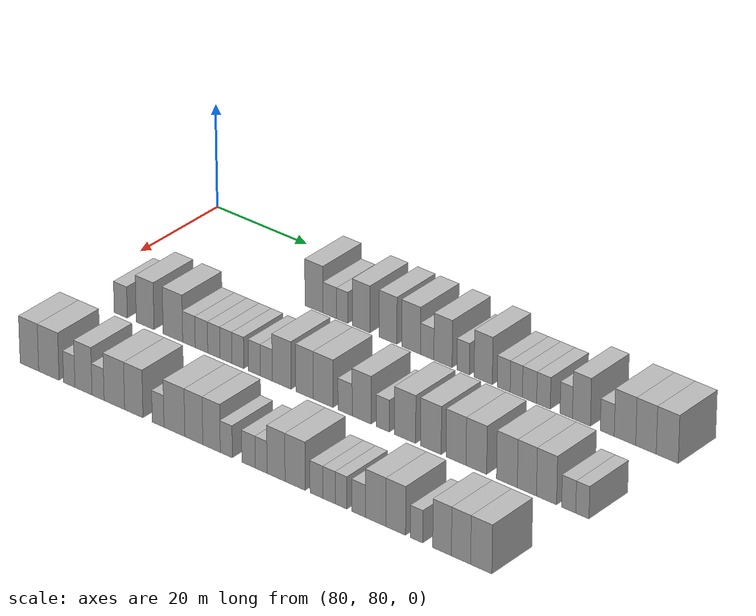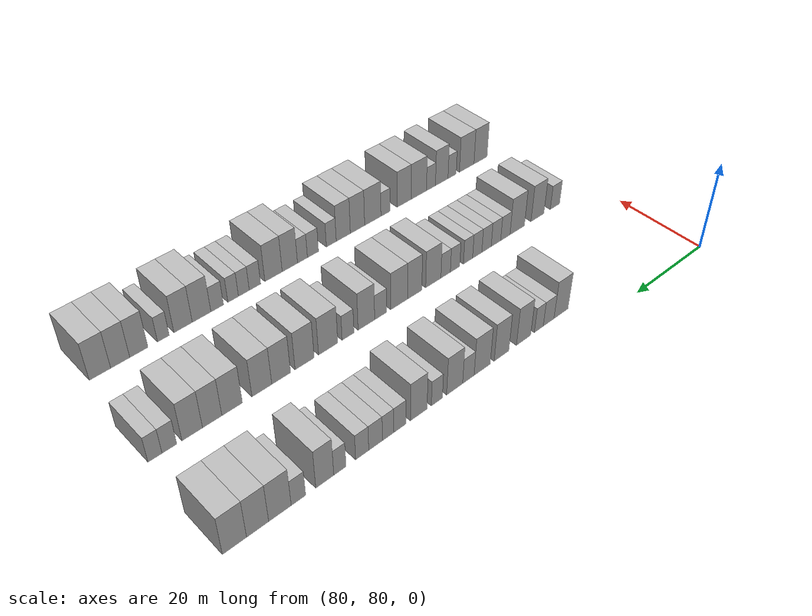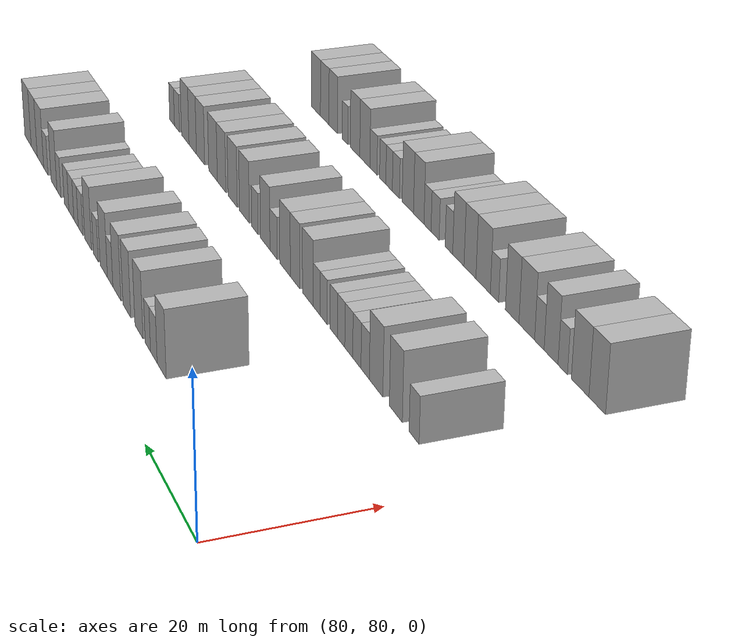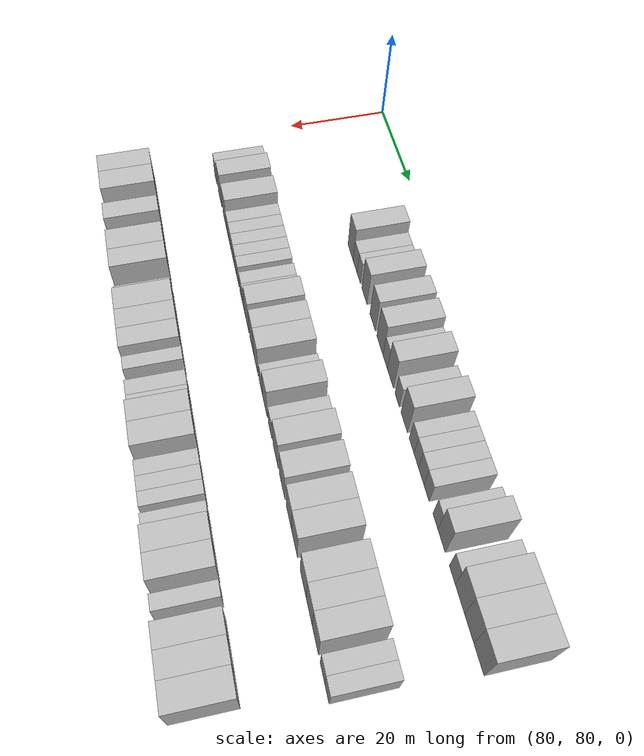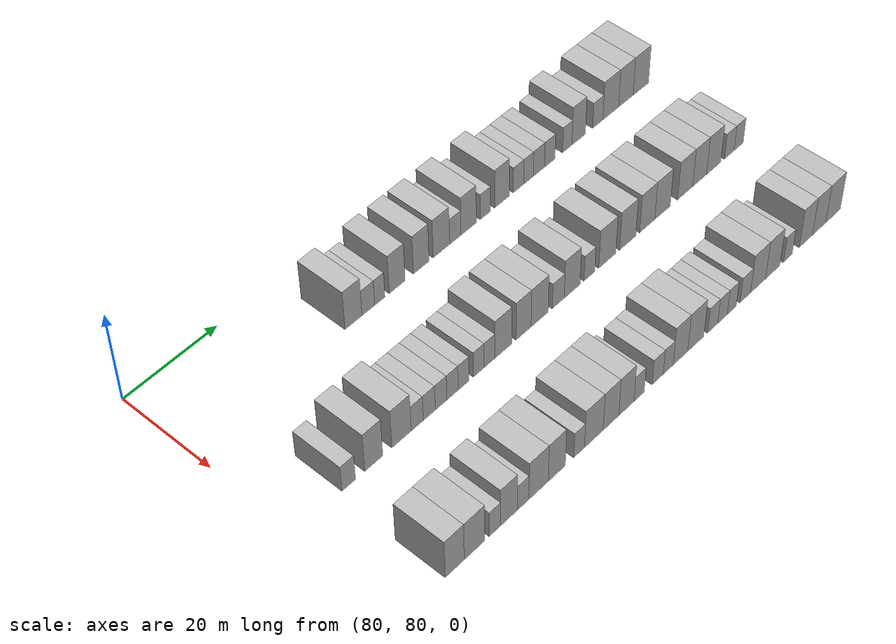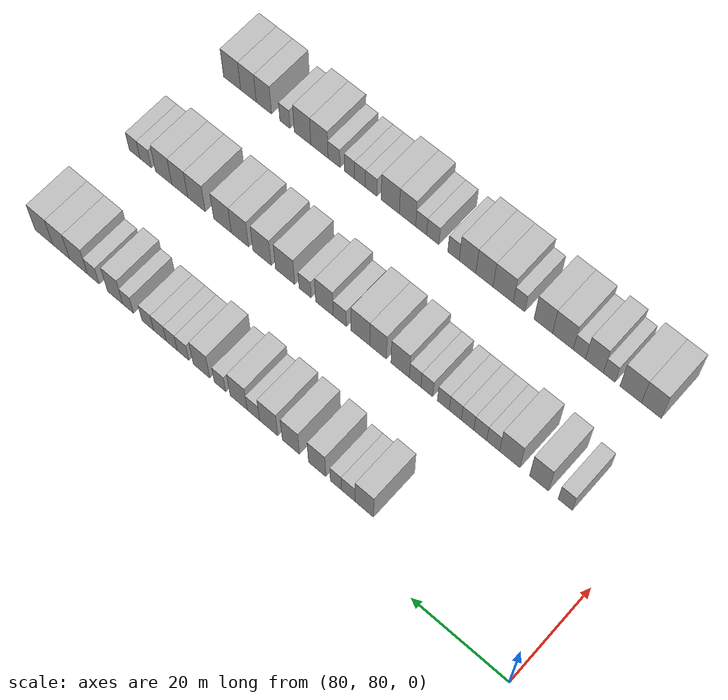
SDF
<sdf version="1.6">
 <world name="default">
  <model name="building_698">
   <static>1</static>
   <pose>91.0000 115.1047 0 0.000000 0.000000 0.000000</pose>
   <link name="link">
    <pose>0 0 4.50 0 0 0</pose>
    <collision name="collision"><geometry><box><size>10.0000 3.9226 9.0000</size></box></geometry></collision>
    <visual name="visual">
     <cast_shadows>0</cast_shadows>
     <geometry><box><size>10.0000 3.9226 9.0000</size></box></geometry>
     <material>
      <script>
       <uri>model://HANNAS_wall/materials/scripts</uri>
       <uri>model://HANNAS_wall/materials/textures</uri>
       <name>vrc/HANNAS_wall</name>
      </script>
     </material>
    </visual>
   </link>
  </model>
  <model name="building_699">
   <static>1</static>
   <pose>91.0000 118.5454 0 0.000000 0.000000 0.000000</pose>
   <link name="link">
    <pose>0 0 3.00 0 0 0</pose>
    <collision name="collision"><geometry><box><size>10.0000 2.9587 6.0000</size></box></geometry></collision>
    <visual name="visual">
     <cast_shadows>0</cast_shadows>
     <geometry><box><size>10.0000 2.9587 6.0000</size></box></geometry>
     <material>
      <script>
       <uri>model://HANNAS_wall/materials/scripts</uri>
       <uri>model://HANNAS_wall/materials/textures</uri>
       <name>vrc/HANNAS_wall</name>
      </script>
     </material>
    </visual>
   </link>
  </model>
  <model name="building_700">
   <static>1</static>
   <pose>91.0000 121.2249 0 0.000000 0.000000 0.000000</pose>
   <link name="link">
    <pose>0 0 3.00 0 0 0</pose>
    <collision name="collision"><geometry><box><size>10.0000 2.4004 6.0000</size></box></geometry></collision>
    <visual name="visual">
     <cast_shadows>0</cast_shadows>
     <geometry><box><size>10.0000 2.4004 6.0000</size></box></geometry>
     <material>
      <script>
       <uri>model://HANNAS_wall/materials/scripts</uri>
       <uri>model://HANNAS_wall/materials/textures</uri>
       <name>vrc/HANNAS_wall</name>
      </script>
     </material>
    </visual>
   </link>
  </model>
  <model name="building_701">
   <static>1</static>
   <pose>91.0000 125.3117 0 0.000000 0.000000 0.000000</pose>
   <link name="link">
    <pose>0 0 4.50 0 0 0</pose>
    <collision name="collision"><geometry><box><size>10.0000 3.7732 9.0000</size></box></geometry></collision>
    <visual name="visual">
     <cast_shadows>0</cast_shadows>
     <geometry><box><size>10.0000 3.7732 9.0000</size></box></geometry>
     <material>
      <script>
       <uri>model://HANNAS_wall/materials/scripts</uri>
       <uri>model://HANNAS_wall/materials/textures</uri>
       <name>vrc/HANNAS_wall</name>
      </script>
     </material>
    </visual>
   </link>
  </model>
  <model name="building_702">
   <static>1</static>
   <pose>91.0000 131.0826 0 0.000000 0.000000 0.000000</pose>
   <link name="link">
    <pose>0 0 4.50 0 0 0</pose>
    <collision name="collision"><geometry><box><size>10.0000 3.7686 9.0000</size></box></geometry></collision>
    <visual name="visual">
     <cast_shadows>0</cast_shadows>
     <geometry><box><size>10.0000 3.7686 9.0000</size></box></geometry>
     <material>
      <script>
       <uri>model://HANNAS_wall/materials/scripts</uri>
       <uri>model://HANNAS_wall/materials/textures</uri>
       <name>vrc/HANNAS_wall</name>
      </script>
     </material>
    </visual>
   </link>
  </model>
  <model name="building_703">
   <static>1</static>
   <pose>91.0000 135.9867 0 0.000000 0.000000 0.000000</pose>
   <link name="link">
    <pose>0 0 4.50 0 0 0</pose>
    <collision name="collision"><geometry><box><size>10.0000 4.0396 9.0000</size></box></geometry></collision>
    <visual name="visual">
     <cast_shadows>0</cast_shadows>
     <geometry><box><size>10.0000 4.0396 9.0000</size></box></geometry>
     <material>
      <script>
       <uri>model://HANNAS_wall/materials/scripts</uri>
       <uri>model://HANNAS_wall/materials/textures</uri>
       <name>vrc/HANNAS_wall</name>
      </script>
     </material>
    </visual>
   </link>
  </model>
  <model name="building_704">
   <static>1</static>
   <pose>91.0000 139.4084 0 0.000000 0.000000 0.000000</pose>
   <link name="link">
    <pose>0 0 3.00 0 0 0</pose>
    <collision name="collision"><geometry><box><size>10.0000 2.8037 6.0000</size></box></geometry></collision>
    <visual name="visual">
     <cast_shadows>0</cast_shadows>
     <geometry><box><size>10.0000 2.8037 6.0000</size></box></geometry>
     <material>
      <script>
       <uri>model://HANNAS_wall/materials/scripts</uri>
       <uri>model://HANNAS_wall/materials/textures</uri>
       <name>vrc/HANNAS_wall</name>
      </script>
     </material>
    </visual>
   </link>
  </model>
  <model name="building_705">
   <static>1</static>
   <pose>91.0000 142.7332 0 0.000000 0.000000 0.000000</pose>
   <link name="link">
    <pose>0 0 4.50 0 0 0</pose>
    <collision name="collision"><geometry><box><size>10.0000 3.8460 9.0000</size></box></geometry></collision>
    <visual name="visual">
     <cast_shadows>0</cast_shadows>
     <geometry><box><size>10.0000 3.8460 9.0000</size></box></geometry>
     <material>
      <script>
       <uri>model://HANNAS_wall/materials/scripts</uri>
       <uri>model://HANNAS_wall/materials/textures</uri>
       <name>vrc/HANNAS_wall</name>
      </script>
     </material>
    </visual>
   </link>
  </model>
  <model name="building_706">
   <static>1</static>
   <pose>91.0000 146.9626 0 0.000000 0.000000 0.000000</pose>
   <link name="link">
    <pose>0 0 3.00 0 0 0</pose>
    <collision name="collision"><geometry><box><size>10.0000 2.6127 6.0000</size></box></geometry></collision>
    <visual name="visual">
     <cast_shadows>0</cast_shadows>
     <geometry><box><size>10.0000 2.6127 6.0000</size></box></geometry>
     <material>
      <script>
       <uri>model://HANNAS_wall/materials/scripts</uri>
       <uri>model://HANNAS_wall/materials/textures</uri>
       <name>vrc/HANNAS_wall</name>
      </script>
     </material>
    </visual>
   </link>
  </model>
  <model name="building_707">
   <static>1</static>
   <pose>91.0000 151.1755 0 0.000000 0.000000 0.000000</pose>
   <link name="link">
    <pose>0 0 4.50 0 0 0</pose>
    <collision name="collision"><geometry><box><size>10.0000 3.8131 9.0000</size></box></geometry></collision>
    <visual name="visual">
     <cast_shadows>0</cast_shadows>
     <geometry><box><size>10.0000 3.8131 9.0000</size></box></geometry>
     <material>
      <script>
       <uri>model://HANNAS_wall/materials/scripts</uri>
       <uri>model://HANNAS_wall/materials/textures</uri>
       <name>vrc/HANNAS_wall</name>
      </script>
     </material>
    </visual>
   </link>
  </model>
  <model name="building_708">
   <static>1</static>
   <pose>91.0000 155.4325 0 0.000000 0.000000 0.000000</pose>
   <link name="link">
    <pose>0 0 3.00 0 0 0</pose>
    <collision name="collision"><geometry><box><size>10.0000 2.7009 6.0000</size></box></geometry></collision>
    <visual name="visual">
     <cast_shadows>0</cast_shadows>
     <geometry><box><size>10.0000 2.7009 6.0000</size></box></geometry>
     <material>
      <script>
       <uri>model://HANNAS_wall/materials/scripts</uri>
       <uri>model://HANNAS_wall/materials/textures</uri>
       <name>vrc/HANNAS_wall</name>
      </script>
     </material>
    </visual>
   </link>
  </model>
  <model name="building_709">
   <static>1</static>
   <pose>91.0000 158.0465 0 0.000000 0.000000 0.000000</pose>
   <link name="link">
    <pose>0 0 3.00 0 0 0</pose>
    <collision name="collision"><geometry><box><size>10.0000 2.5272 6.0000</size></box></geometry></collision>
    <visual name="visual">
     <cast_shadows>0</cast_shadows>
     <geometry><box><size>10.0000 2.5272 6.0000</size></box></geometry>
     <material>
      <script>
       <uri>model://HANNAS_wall/materials/scripts</uri>
       <uri>model://HANNAS_wall/materials/textures</uri>
       <name>vrc/HANNAS_wall</name>
      </script>
     </material>
    </visual>
   </link>
  </model>
  <model name="building_710">
   <static>1</static>
   <pose>91.0000 160.7879 0 0.000000 0.000000 0.000000</pose>
   <link name="link">
    <pose>0 0 3.00 0 0 0</pose>
    <collision name="collision"><geometry><box><size>10.0000 2.9554 6.0000</size></box></geometry></collision>
    <visual name="visual">
     <cast_shadows>0</cast_shadows>
     <geometry><box><size>10.0000 2.9554 6.0000</size></box></geometry>
     <material>
      <script>
       <uri>model://HANNAS_wall/materials/scripts</uri>
       <uri>model://HANNAS_wall/materials/textures</uri>
       <name>vrc/HANNAS_wall</name>
      </script>
     </material>
    </visual>
   </link>
  </model>
  <model name="building_711">
   <static>1</static>
   <pose>91.0000 163.6595 0 0.000000 0.000000 0.000000</pose>
   <link name="link">
    <pose>0 0 3.00 0 0 0</pose>
    <collision name="collision"><geometry><box><size>10.0000 2.7878 6.0000</size></box></geometry></collision>
    <visual name="visual">
     <cast_shadows>0</cast_shadows>
     <geometry><box><size>10.0000 2.7878 6.0000</size></box></geometry>
     <material>
      <script>
       <uri>model://HANNAS_wall/materials/scripts</uri>
       <uri>model://HANNAS_wall/materials/textures</uri>
       <name>vrc/HANNAS_wall</name>
      </script>
     </material>
    </visual>
   </link>
  </model>
  <model name="building_712">
   <static>1</static>
   <pose>91.0000 168.3197 0 0.000000 0.000000 0.000000</pose>
   <link name="link">
    <pose>0 0 3.00 0 0 0</pose>
    <collision name="collision"><geometry><box><size>10.0000 2.5326 6.0000</size></box></geometry></collision>
    <visual name="visual">
     <cast_shadows>0</cast_shadows>
     <geometry><box><size>10.0000 2.5326 6.0000</size></box></geometry>
     <material>
      <script>
       <uri>model://HANNAS_wall/materials/scripts</uri>
       <uri>model://HANNAS_wall/materials/textures</uri>
       <name>vrc/HANNAS_wall</name>
      </script>
     </material>
    </visual>
   </link>
  </model>
  <model name="building_713">
   <static>1</static>
   <pose>91.0000 171.4127 0 0.000000 0.000000 0.000000</pose>
   <link name="link">
    <pose>0 0 4.50 0 0 0</pose>
    <collision name="collision"><geometry><box><size>10.0000 3.6535 9.0000</size></box></geometry></collision>
    <visual name="visual">
     <cast_shadows>0</cast_shadows>
     <geometry><box><size>10.0000 3.6535 9.0000</size></box></geometry>
     <material>
      <script>
       <uri>model://HANNAS_wall/materials/scripts</uri>
       <uri>model://HANNAS_wall/materials/textures</uri>
       <name>vrc/HANNAS_wall</name>
      </script>
     </material>
    </visual>
   </link>
  </model>
  <model name="building_714">
   <static>1</static>
   <pose>91.0000 176.6559 0 0.000000 0.000000 0.000000</pose>
   <link name="link">
    <pose>0 0 3.00 0 0 0</pose>
    <collision name="collision"><geometry><box><size>10.0000 2.8329 6.0000</size></box></geometry></collision>
    <visual name="visual">
     <cast_shadows>0</cast_shadows>
     <geometry><box><size>10.0000 2.8329 6.0000</size></box></geometry>
     <material>
      <script>
       <uri>model://HANNAS_wall/materials/scripts</uri>
       <uri>model://HANNAS_wall/materials/textures</uri>
       <name>vrc/HANNAS_wall</name>
      </script>
     </material>
    </visual>
   </link>
  </model>
  <model name="building_715">
   <static>1</static>
   <pose>91.0000 180.2312 0 0.000000 0.000000 0.000000</pose>
   <link name="link">
    <pose>0 0 4.50 0 0 0</pose>
    <collision name="collision"><geometry><box><size>10.0000 4.3177 9.0000</size></box></geometry></collision>
    <visual name="visual">
     <cast_shadows>0</cast_shadows>
     <geometry><box><size>10.0000 4.3177 9.0000</size></box></geometry>
     <material>
      <script>
       <uri>model://HANNAS_wall/materials/scripts</uri>
       <uri>model://HANNAS_wall/materials/textures</uri>
       <name>vrc/HANNAS_wall</name>
      </script>
     </material>
    </visual>
   </link>
  </model>
  <model name="building_716">
   <static>1</static>
   <pose>91.0000 184.4493 0 0.000000 0.000000 0.000000</pose>
   <link name="link">
    <pose>0 0 4.50 0 0 0</pose>
    <collision name="collision"><geometry><box><size>10.0000 4.1187 9.0000</size></box></geometry></collision>
    <visual name="visual">
     <cast_shadows>0</cast_shadows>
     <geometry><box><size>10.0000 4.1187 9.0000</size></box></geometry>
     <material>
      <script>
       <uri>model://HANNAS_wall/materials/scripts</uri>
       <uri>model://HANNAS_wall/materials/textures</uri>
       <name>vrc/HANNAS_wall</name>
      </script>
     </material>
    </visual>
   </link>
  </model>
  <model name="building_717">
   <static>1</static>
   <pose>91.0000 188.7040 0 0.000000 0.000000 0.000000</pose>
   <link name="link">
    <pose>0 0 4.50 0 0 0</pose>
    <collision name="collision"><geometry><box><size>10.0000 4.3907 9.0000</size></box></geometry></collision>
    <visual name="visual">
     <cast_shadows>0</cast_shadows>
     <geometry><box><size>10.0000 4.3907 9.0000</size></box></geometry>
     <material>
      <script>
       <uri>model://HANNAS_wall/materials/scripts</uri>
       <uri>model://HANNAS_wall/materials/textures</uri>
       <name>vrc/HANNAS_wall</name>
      </script>
     </material>
    </visual>
   </link>
  </model>
  <model name="building_883">
   <static>1</static>
   <pose>113.0000 91.5932 0 0.000000 0.000000 0.000000</pose>
   <link name="link">
    <pose>0 0 3.00 0 0 0</pose>
    <collision name="collision"><geometry><box><size>10.0000 2.9163 6.0000</size></box></geometry></collision>
    <visual name="visual">
     <cast_shadows>0</cast_shadows>
     <geometry><box><size>10.0000 2.9163 6.0000</size></box></geometry>
     <material>
      <script>
       <uri>model://HANNAS_wall/materials/scripts</uri>
       <uri>model://HANNAS_wall/materials/textures</uri>
       <name>vrc/HANNAS_wall</name>
      </script>
     </material>
    </visual>
   </link>
  </model>
  <model name="building_884">
   <static>1</static>
   <pose>113.0000 97.0193 0 0.000000 0.000000 0.000000</pose>
   <link name="link">
    <pose>0 0 4.50 0 0 0</pose>
    <collision name="collision"><geometry><box><size>10.0000 3.9360 9.0000</size></box></geometry></collision>
    <visual name="visual">
     <cast_shadows>0</cast_shadows>
     <geometry><box><size>10.0000 3.9360 9.0000</size></box></geometry>
     <material>
      <script>
       <uri>model://HANNAS_wall/materials/scripts</uri>
       <uri>model://HANNAS_wall/materials/textures</uri>
       <name>vrc/HANNAS_wall</name>
      </script>
     </material>
    </visual>
   </link>
  </model>
  <model name="building_885">
   <static>1</static>
   <pose>113.0000 103.1358 0 0.000000 0.000000 0.000000</pose>
   <link name="link">
    <pose>0 0 4.50 0 0 0</pose>
    <collision name="collision"><geometry><box><size>10.0000 4.2968 9.0000</size></box></geometry></collision>
    <visual name="visual">
     <cast_shadows>0</cast_shadows>
     <geometry><box><size>10.0000 4.2968 9.0000</size></box></geometry>
     <material>
      <script>
       <uri>model://HANNAS_wall/materials/scripts</uri>
       <uri>model://HANNAS_wall/materials/textures</uri>
       <name>vrc/HANNAS_wall</name>
      </script>
     </material>
    </visual>
   </link>
  </model>
  <model name="building_886">
   <static>1</static>
   <pose>113.0000 106.6493 0 0.000000 0.000000 0.000000</pose>
   <link name="link">
    <pose>0 0 3.00 0 0 0</pose>
    <collision name="collision"><geometry><box><size>10.0000 2.7303 6.0000</size></box></geometry></collision>
    <visual name="visual">
     <cast_shadows>0</cast_shadows>
     <geometry><box><size>10.0000 2.7303 6.0000</size></box></geometry>
     <material>
      <script>
       <uri>model://HANNAS_wall/materials/scripts</uri>
       <uri>model://HANNAS_wall/materials/textures</uri>
       <name>vrc/HANNAS_wall</name>
      </script>
     </material>
    </visual>
   </link>
  </model>
  <model name="building_887">
   <static>1</static>
   <pose>113.0000 109.3867 0 0.000000 0.000000 0.000000</pose>
   <link name="link">
    <pose>0 0 3.00 0 0 0</pose>
    <collision name="collision"><geometry><box><size>10.0000 2.7445 6.0000</size></box></geometry></collision>
    <visual name="visual">
     <cast_shadows>0</cast_shadows>
     <geometry><box><size>10.0000 2.7445 6.0000</size></box></geometry>
     <material>
      <script>
       <uri>model://HANNAS_wall/materials/scripts</uri>
       <uri>model://HANNAS_wall/materials/textures</uri>
       <name>vrc/HANNAS_wall</name>
      </script>
     </material>
    </visual>
   </link>
  </model>
  <model name="building_888">
   <static>1</static>
   <pose>113.0000 112.0951 0 0.000000 0.000000 0.000000</pose>
   <link name="link">
    <pose>0 0 3.00 0 0 0</pose>
    <collision name="collision"><geometry><box><size>10.0000 2.6723 6.0000</size></box></geometry></collision>
    <visual name="visual">
     <cast_shadows>0</cast_shadows>
     <geometry><box><size>10.0000 2.6723 6.0000</size></box></geometry>
     <material>
      <script>
       <uri>model://HANNAS_wall/materials/scripts</uri>
       <uri>model://HANNAS_wall/materials/textures</uri>
       <name>vrc/HANNAS_wall</name>
      </script>
     </material>
    </visual>
   </link>
  </model>
  <model name="building_889">
   <static>1</static>
   <pose>113.0000 114.7264 0 0.000000 0.000000 0.000000</pose>
   <link name="link">
    <pose>0 0 3.00 0 0 0</pose>
    <collision name="collision"><geometry><box><size>10.0000 2.5903 6.0000</size></box></geometry></collision>
    <visual name="visual">
     <cast_shadows>0</cast_shadows>
     <geometry><box><size>10.0000 2.5903 6.0000</size></box></geometry>
     <material>
      <script>
       <uri>model://HANNAS_wall/materials/scripts</uri>
       <uri>model://HANNAS_wall/materials/textures</uri>
       <name>vrc/HANNAS_wall</name>
      </script>
     </material>
    </visual>
   </link>
  </model>
  <model name="building_890">
   <static>1</static>
   <pose>113.0000 117.3029 0 0.000000 0.000000 0.000000</pose>
   <link name="link">
    <pose>0 0 3.00 0 0 0</pose>
    <collision name="collision"><geometry><box><size>10.0000 2.5628 6.0000</size></box></geometry></collision>
    <visual name="visual">
     <cast_shadows>0</cast_shadows>
     <geometry><box><size>10.0000 2.5628 6.0000</size></box></geometry>
     <material>
      <script>
       <uri>model://HANNAS_wall/materials/scripts</uri>
       <uri>model://HANNAS_wall/materials/textures</uri>
       <name>vrc/HANNAS_wall</name>
      </script>
     </material>
    </visual>
   </link>
  </model>
  <model name="building_891">
   <static>1</static>
   <pose>113.0000 120.8679 0 0.000000 0.000000 0.000000</pose>
   <link name="link">
    <pose>0 0 3.00 0 0 0</pose>
    <collision name="collision"><geometry><box><size>10.0000 2.5671 6.0000</size></box></geometry></collision>
    <visual name="visual">
     <cast_shadows>0</cast_shadows>
     <geometry><box><size>10.0000 2.5671 6.0000</size></box></geometry>
     <material>
      <script>
       <uri>model://HANNAS_wall/materials/scripts</uri>
       <uri>model://HANNAS_wall/materials/textures</uri>
       <name>vrc/HANNAS_wall</name>
      </script>
     </material>
    </visual>
   </link>
  </model>
  <model name="building_892">
   <static>1</static>
   <pose>113.0000 123.4272 0 0.000000 0.000000 0.000000</pose>
   <link name="link">
    <pose>0 0 3.00 0 0 0</pose>
    <collision name="collision"><geometry><box><size>10.0000 2.5516 6.0000</size></box></geometry></collision>
    <visual name="visual">
     <cast_shadows>0</cast_shadows>
     <geometry><box><size>10.0000 2.5516 6.0000</size></box></geometry>
     <material>
      <script>
       <uri>model://HANNAS_wall/materials/scripts</uri>
       <uri>model://HANNAS_wall/materials/textures</uri>
       <name>vrc/HANNAS_wall</name>
      </script>
     </material>
    </visual>
   </link>
  </model>
  <model name="building_893">
   <static>1</static>
   <pose>113.0000 126.7209 0 0.000000 0.000000 0.000000</pose>
   <link name="link">
    <pose>0 0 4.50 0 0 0</pose>
    <collision name="collision"><geometry><box><size>10.0000 4.0356 9.0000</size></box></geometry></collision>
    <visual name="visual">
     <cast_shadows>0</cast_shadows>
     <geometry><box><size>10.0000 4.0356 9.0000</size></box></geometry>
     <material>
      <script>
       <uri>model://HANNAS_wall/materials/scripts</uri>
       <uri>model://HANNAS_wall/materials/textures</uri>
       <name>vrc/HANNAS_wall</name>
      </script>
     </material>
    </visual>
   </link>
  </model>
  <model name="building_894">
   <static>1</static>
   <pose>113.0000 131.5843 0 0.000000 0.000000 0.000000</pose>
   <link name="link">
    <pose>0 0 4.50 0 0 0</pose>
    <collision name="collision"><geometry><box><size>10.0000 3.6912 9.0000</size></box></geometry></collision>
    <visual name="visual">
     <cast_shadows>0</cast_shadows>
     <geometry><box><size>10.0000 3.6912 9.0000</size></box></geometry>
     <material>
      <script>
       <uri>model://HANNAS_wall/materials/scripts</uri>
       <uri>model://HANNAS_wall/materials/textures</uri>
       <name>vrc/HANNAS_wall</name>
      </script>
     </material>
    </visual>
   </link>
  </model>
  <model name="building_895">
   <static>1</static>
   <pose>113.0000 135.5460 0 0.000000 0.000000 0.000000</pose>
   <link name="link">
    <pose>0 0 4.50 0 0 0</pose>
    <collision name="collision"><geometry><box><size>10.0000 4.2323 9.0000</size></box></geometry></collision>
    <visual name="visual">
     <cast_shadows>0</cast_shadows>
     <geometry><box><size>10.0000 4.2323 9.0000</size></box></geometry>
     <material>
      <script>
       <uri>model://HANNAS_wall/materials/scripts</uri>
       <uri>model://HANNAS_wall/materials/textures</uri>
       <name>vrc/HANNAS_wall</name>
      </script>
     </material>
    </visual>
   </link>
  </model>
  <model name="building_896">
   <static>1</static>
   <pose>113.0000 140.1565 0 0.000000 0.000000 0.000000</pose>
   <link name="link">
    <pose>0 0 3.00 0 0 0</pose>
    <collision name="collision"><geometry><box><size>10.0000 2.9887 6.0000</size></box></geometry></collision>
    <visual name="visual">
     <cast_shadows>0</cast_shadows>
     <geometry><box><size>10.0000 2.9887 6.0000</size></box></geometry>
     <material>
      <script>
       <uri>model://HANNAS_wall/materials/scripts</uri>
       <uri>model://HANNAS_wall/materials/textures</uri>
       <name>vrc/HANNAS_wall</name>
      </script>
     </material>
    </visual>
   </link>
  </model>
  <model name="building_897">
   <static>1</static>
   <pose>113.0000 143.6491 0 0.000000 0.000000 0.000000</pose>
   <link name="link">
    <pose>0 0 4.50 0 0 0</pose>
    <collision name="collision"><geometry><box><size>10.0000 3.9964 9.0000</size></box></geometry></collision>
    <visual name="visual">
     <cast_shadows>0</cast_shadows>
     <geometry><box><size>10.0000 3.9964 9.0000</size></box></geometry>
     <material>
      <script>
       <uri>model://HANNAS_wall/materials/scripts</uri>
       <uri>model://HANNAS_wall/materials/textures</uri>
       <name>vrc/HANNAS_wall</name>
      </script>
     </material>
    </visual>
   </link>
  </model>
  <model name="building_898">
   <static>1</static>
   <pose>113.0000 148.0474 0 0.000000 0.000000 0.000000</pose>
   <link name="link">
    <pose>0 0 3.00 0 0 0</pose>
    <collision name="collision"><geometry><box><size>10.0000 2.8003 6.0000</size></box></geometry></collision>
    <visual name="visual">
     <cast_shadows>0</cast_shadows>
     <geometry><box><size>10.0000 2.8003 6.0000</size></box></geometry>
     <material>
      <script>
       <uri>model://HANNAS_wall/materials/scripts</uri>
       <uri>model://HANNAS_wall/materials/textures</uri>
       <name>vrc/HANNAS_wall</name>
      </script>
     </material>
    </visual>
   </link>
  </model>
  <model name="building_899">
   <static>1</static>
   <pose>113.0000 152.6625 0 0.000000 0.000000 0.000000</pose>
   <link name="link">
    <pose>0 0 4.50 0 0 0</pose>
    <collision name="collision"><geometry><box><size>10.0000 4.4299 9.0000</size></box></geometry></collision>
    <visual name="visual">
     <cast_shadows>0</cast_shadows>
     <geometry><box><size>10.0000 4.4299 9.0000</size></box></geometry>
     <material>
      <script>
       <uri>model://HANNAS_wall/materials/scripts</uri>
       <uri>model://HANNAS_wall/materials/textures</uri>
       <name>vrc/HANNAS_wall</name>
      </script>
     </material>
    </visual>
   </link>
  </model>
  <model name="building_900">
   <static>1</static>
   <pose>113.0000 158.0109 0 0.000000 0.000000 0.000000</pose>
   <link name="link">
    <pose>0 0 4.50 0 0 0</pose>
    <collision name="collision"><geometry><box><size>10.0000 4.2669 9.0000</size></box></geometry></collision>
    <visual name="visual">
     <cast_shadows>0</cast_shadows>
     <geometry><box><size>10.0000 4.2669 9.0000</size></box></geometry>
     <material>
      <script>
       <uri>model://HANNAS_wall/materials/scripts</uri>
       <uri>model://HANNAS_wall/materials/textures</uri>
       <name>vrc/HANNAS_wall</name>
      </script>
     </material>
    </visual>
   </link>
  </model>
  <model name="building_901">
   <static>1</static>
   <pose>113.0000 163.1809 0 0.000000 0.000000 0.000000</pose>
   <link name="link">
    <pose>0 0 4.50 0 0 0</pose>
    <collision name="collision"><geometry><box><size>10.0000 4.0730 9.0000</size></box></geometry></collision>
    <visual name="visual">
     <cast_shadows>0</cast_shadows>
     <geometry><box><size>10.0000 4.0730 9.0000</size></box></geometry>
     <material>
      <script>
       <uri>model://HANNAS_wall/materials/scripts</uri>
       <uri>model://HANNAS_wall/materials/textures</uri>
       <name>vrc/HANNAS_wall</name>
      </script>
     </material>
    </visual>
   </link>
  </model>
  <model name="building_902">
   <static>1</static>
   <pose>113.0000 167.3187 0 0.000000 0.000000 0.000000</pose>
   <link name="link">
    <pose>0 0 4.50 0 0 0</pose>
    <collision name="collision"><geometry><box><size>10.0000 4.2027 9.0000</size></box></geometry></collision>
    <visual name="visual">
     <cast_shadows>0</cast_shadows>
     <geometry><box><size>10.0000 4.2027 9.0000</size></box></geometry>
     <material>
      <script>
       <uri>model://HANNAS_wall/materials/scripts</uri>
       <uri>model://HANNAS_wall/materials/textures</uri>
       <name>vrc/HANNAS_wall</name>
      </script>
     </material>
    </visual>
   </link>
  </model>
  <model name="building_903">
   <static>1</static>
   <pose>113.0000 173.5168 0 0.000000 0.000000 0.000000</pose>
   <link name="link">
    <pose>0 0 4.50 0 0 0</pose>
    <collision name="collision"><geometry><box><size>10.0000 4.1936 9.0000</size></box></geometry></collision>
    <visual name="visual">
     <cast_shadows>0</cast_shadows>
     <geometry><box><size>10.0000 4.1936 9.0000</size></box></geometry>
     <material>
      <script>
       <uri>model://HANNAS_wall/materials/scripts</uri>
       <uri>model://HANNAS_wall/materials/textures</uri>
       <name>vrc/HANNAS_wall</name>
      </script>
     </material>
    </visual>
   </link>
  </model>
  <model name="building_904">
   <static>1</static>
   <pose>113.0000 177.5448 0 0.000000 0.000000 0.000000</pose>
   <link name="link">
    <pose>0 0 4.50 0 0 0</pose>
    <collision name="collision"><geometry><box><size>10.0000 3.8624 9.0000</size></box></geometry></collision>
    <visual name="visual">
     <cast_shadows>0</cast_shadows>
     <geometry><box><size>10.0000 3.8624 9.0000</size></box></geometry>
     <material>
      <script>
       <uri>model://HANNAS_wall/materials/scripts</uri>
       <uri>model://HANNAS_wall/materials/textures</uri>
       <name>vrc/HANNAS_wall</name>
      </script>
     </material>
    </visual>
   </link>
  </model>
  <model name="building_905">
   <static>1</static>
   <pose>113.0000 181.4827 0 0.000000 0.000000 0.000000</pose>
   <link name="link">
    <pose>0 0 4.50 0 0 0</pose>
    <collision name="collision"><geometry><box><size>10.0000 4.0134 9.0000</size></box></geometry></collision>
    <visual name="visual">
     <cast_shadows>0</cast_shadows>
     <geometry><box><size>10.0000 4.0134 9.0000</size></box></geometry>
     <material>
      <script>
       <uri>model://HANNAS_wall/materials/scripts</uri>
       <uri>model://HANNAS_wall/materials/textures</uri>
       <name>vrc/HANNAS_wall</name>
      </script>
     </material>
    </visual>
   </link>
  </model>
  <model name="building_906">
   <static>1</static>
   <pose>113.0000 185.8919 0 0.000000 0.000000 0.000000</pose>
   <link name="link">
    <pose>0 0 3.00 0 0 0</pose>
    <collision name="collision"><geometry><box><size>10.0000 2.8051 6.0000</size></box></geometry></collision>
    <visual name="visual">
     <cast_shadows>0</cast_shadows>
     <geometry><box><size>10.0000 2.8051 6.0000</size></box></geometry>
     <material>
      <script>
       <uri>model://HANNAS_wall/materials/scripts</uri>
       <uri>model://HANNAS_wall/materials/textures</uri>
       <name>vrc/HANNAS_wall</name>
      </script>
     </material>
    </visual>
   </link>
  </model>
  <model name="building_907">
   <static>1</static>
   <pose>113.0000 188.6106 0 0.000000 0.000000 0.000000</pose>
   <link name="link">
    <pose>0 0 3.00 0 0 0</pose>
    <collision name="collision"><geometry><box><size>10.0000 2.6323 6.0000</size></box></geometry></collision>
    <visual name="visual">
     <cast_shadows>0</cast_shadows>
     <geometry><box><size>10.0000 2.6323 6.0000</size></box></geometry>
     <material>
      <script>
       <uri>model://HANNAS_wall/materials/scripts</uri>
       <uri>model://HANNAS_wall/materials/textures</uri>
       <name>vrc/HANNAS_wall</name>
      </script>
     </material>
    </visual>
   </link>
  </model>
  <model name="building_1070">
   <static>1</static>
   <pose>135.0000 91.1987 0 0.000000 0.000000 0.000000</pose>
   <link name="link">
    <pose>0 0 4.50 0 0 0</pose>
    <collision name="collision"><geometry><box><size>10.0000 4.1302 9.0000</size></box></geometry></collision>
    <visual name="visual">
     <cast_shadows>0</cast_shadows>
     <geometry><box><size>10.0000 4.1302 9.0000</size></box></geometry>
     <material>
      <script>
       <uri>model://HANNAS_wall/materials/scripts</uri>
       <uri>model://HANNAS_wall/materials/textures</uri>
       <name>vrc/HANNAS_wall</name>
      </script>
     </material>
    </visual>
   </link>
  </model>
  <model name="building_1071">
   <static>1</static>
   <pose>135.0000 95.5090 0 0.000000 0.000000 0.000000</pose>
   <link name="link">
    <pose>0 0 4.50 0 0 0</pose>
    <collision name="collision"><geometry><box><size>10.0000 4.4904 9.0000</size></box></geometry></collision>
    <visual name="visual">
     <cast_shadows>0</cast_shadows>
     <geometry><box><size>10.0000 4.4904 9.0000</size></box></geometry>
     <material>
      <script>
       <uri>model://HANNAS_wall/materials/scripts</uri>
       <uri>model://HANNAS_wall/materials/textures</uri>
       <name>vrc/HANNAS_wall</name>
      </script>
     </material>
    </visual>
   </link>
  </model>
  <model name="building_1072">
   <static>1</static>
   <pose>135.0000 100.0014 0 0.000000 0.000000 0.000000</pose>
   <link name="link">
    <pose>0 0 3.00 0 0 0</pose>
    <collision name="collision"><geometry><box><size>10.0000 2.4945 6.0000</size></box></geometry></collision>
    <visual name="visual">
     <cast_shadows>0</cast_shadows>
     <geometry><box><size>10.0000 2.4945 6.0000</size></box></geometry>
     <material>
      <script>
       <uri>model://HANNAS_wall/materials/scripts</uri>
       <uri>model://HANNAS_wall/materials/textures</uri>
       <name>vrc/HANNAS_wall</name>
      </script>
     </material>
    </visual>
   </link>
  </model>
  <model name="building_1073">
   <static>1</static>
   <pose>135.0000 103.1273 0 0.000000 0.000000 0.000000</pose>
   <link name="link">
    <pose>0 0 4.50 0 0 0</pose>
    <collision name="collision"><geometry><box><size>10.0000 3.7574 9.0000</size></box></geometry></collision>
    <visual name="visual">
     <cast_shadows>0</cast_shadows>
     <geometry><box><size>10.0000 3.7574 9.0000</size></box></geometry>
     <material>
      <script>
       <uri>model://HANNAS_wall/materials/scripts</uri>
       <uri>model://HANNAS_wall/materials/textures</uri>
       <name>vrc/HANNAS_wall</name>
      </script>
     </material>
    </visual>
   </link>
  </model>
  <model name="building_1074">
   <static>1</static>
   <pose>135.0000 106.3194 0 0.000000 0.000000 0.000000</pose>
   <link name="link">
    <pose>0 0 3.00 0 0 0</pose>
    <collision name="collision"><geometry><box><size>10.0000 2.6269 6.0000</size></box></geometry></collision>
    <visual name="visual">
     <cast_shadows>0</cast_shadows>
     <geometry><box><size>10.0000 2.6269 6.0000</size></box></geometry>
     <material>
      <script>
       <uri>model://HANNAS_wall/materials/scripts</uri>
       <uri>model://HANNAS_wall/materials/textures</uri>
       <name>vrc/HANNAS_wall</name>
      </script>
     </material>
    </visual>
   </link>
  </model>
  <model name="building_1075">
   <static>1</static>
   <pose>135.0000 109.8590 0 0.000000 0.000000 0.000000</pose>
   <link name="link">
    <pose>0 0 4.50 0 0 0</pose>
    <collision name="collision"><geometry><box><size>10.0000 4.4523 9.0000</size></box></geometry></collision>
    <visual name="visual">
     <cast_shadows>0</cast_shadows>
     <geometry><box><size>10.0000 4.4523 9.0000</size></box></geometry>
     <material>
      <script>
       <uri>model://HANNAS_wall/materials/scripts</uri>
       <uri>model://HANNAS_wall/materials/textures</uri>
       <name>vrc/HANNAS_wall</name>
      </script>
     </material>
    </visual>
   </link>
  </model>
  <model name="building_1076">
   <static>1</static>
   <pose>135.0000 114.0672 0 0.000000 0.000000 0.000000</pose>
   <link name="link">
    <pose>0 0 4.50 0 0 0</pose>
    <collision name="collision"><geometry><box><size>10.0000 3.9640 9.0000</size></box></geometry></collision>
    <visual name="visual">
     <cast_shadows>0</cast_shadows>
     <geometry><box><size>10.0000 3.9640 9.0000</size></box></geometry>
     <material>
      <script>
       <uri>model://HANNAS_wall/materials/scripts</uri>
       <uri>model://HANNAS_wall/materials/textures</uri>
       <name>vrc/HANNAS_wall</name>
      </script>
     </material>
    </visual>
   </link>
  </model>
  <model name="building_1077">
   <static>1</static>
   <pose>135.0000 119.3091 0 0.000000 0.000000 0.000000</pose>
   <link name="link">
    <pose>0 0 3.00 0 0 0</pose>
    <collision name="collision"><geometry><box><size>10.0000 2.5199 6.0000</size></box></geometry></collision>
    <visual name="visual">
     <cast_shadows>0</cast_shadows>
     <geometry><box><size>10.0000 2.5199 6.0000</size></box></geometry>
     <material>
      <script>
       <uri>model://HANNAS_wall/materials/scripts</uri>
       <uri>model://HANNAS_wall/materials/textures</uri>
       <name>vrc/HANNAS_wall</name>
      </script>
     </material>
    </visual>
   </link>
  </model>
  <model name="building_1078">
   <static>1</static>
   <pose>135.0000 122.8007 0 0.000000 0.000000 0.000000</pose>
   <link name="link">
    <pose>0 0 4.50 0 0 0</pose>
    <collision name="collision"><geometry><box><size>10.0000 4.4634 9.0000</size></box></geometry></collision>
    <visual name="visual">
     <cast_shadows>0</cast_shadows>
     <geometry><box><size>10.0000 4.4634 9.0000</size></box></geometry>
     <material>
      <script>
       <uri>model://HANNAS_wall/materials/scripts</uri>
       <uri>model://HANNAS_wall/materials/textures</uri>
       <name>vrc/HANNAS_wall</name>
      </script>
     </material>
    </visual>
   </link>
  </model>
  <model name="building_1079">
   <static>1</static>
   <pose>135.0000 126.9360 0 0.000000 0.000000 0.000000</pose>
   <link name="link">
    <pose>0 0 4.50 0 0 0</pose>
    <collision name="collision"><geometry><box><size>10.0000 3.8072 9.0000</size></box></geometry></collision>
    <visual name="visual">
     <cast_shadows>0</cast_shadows>
     <geometry><box><size>10.0000 3.8072 9.0000</size></box></geometry>
     <material>
      <script>
       <uri>model://HANNAS_wall/materials/scripts</uri>
       <uri>model://HANNAS_wall/materials/textures</uri>
       <name>vrc/HANNAS_wall</name>
      </script>
     </material>
    </visual>
   </link>
  </model>
  <model name="building_1080">
   <static>1</static>
   <pose>135.0000 130.6940 0 0.000000 0.000000 0.000000</pose>
   <link name="link">
    <pose>0 0 4.50 0 0 0</pose>
    <collision name="collision"><geometry><box><size>10.0000 3.7088 9.0000</size></box></geometry></collision>
    <visual name="visual">
     <cast_shadows>0</cast_shadows>
     <geometry><box><size>10.0000 3.7088 9.0000</size></box></geometry>
     <material>
      <script>
       <uri>model://HANNAS_wall/materials/scripts</uri>
       <uri>model://HANNAS_wall/materials/textures</uri>
       <name>vrc/HANNAS_wall</name>
      </script>
     </material>
    </visual>
   </link>
  </model>
  <model name="building_1081">
   <static>1</static>
   <pose>135.0000 133.8235 0 0.000000 0.000000 0.000000</pose>
   <link name="link">
    <pose>0 0 3.00 0 0 0</pose>
    <collision name="collision"><geometry><box><size>10.0000 2.5501 6.0000</size></box></geometry></collision>
    <visual name="visual">
     <cast_shadows>0</cast_shadows>
     <geometry><box><size>10.0000 2.5501 6.0000</size></box></geometry>
     <material>
      <script>
       <uri>model://HANNAS_wall/materials/scripts</uri>
       <uri>model://HANNAS_wall/materials/textures</uri>
       <name>vrc/HANNAS_wall</name>
      </script>
     </material>
    </visual>
   </link>
  </model>
  <model name="building_1082">
   <static>1</static>
   <pose>135.0000 138.5022 0 0.000000 0.000000 0.000000</pose>
   <link name="link">
    <pose>0 0 3.00 0 0 0</pose>
    <collision name="collision"><geometry><box><size>10.0000 2.8072 6.0000</size></box></geometry></collision>
    <visual name="visual">
     <cast_shadows>0</cast_shadows>
     <geometry><box><size>10.0000 2.8072 6.0000</size></box></geometry>
     <material>
      <script>
       <uri>model://HANNAS_wall/materials/scripts</uri>
       <uri>model://HANNAS_wall/materials/textures</uri>
       <name>vrc/HANNAS_wall</name>
      </script>
     </material>
    </visual>
   </link>
  </model>
  <model name="building_1083">
   <static>1</static>
   <pose>135.0000 141.1397 0 0.000000 0.000000 0.000000</pose>
   <link name="link">
    <pose>0 0 3.00 0 0 0</pose>
    <collision name="collision"><geometry><box><size>10.0000 2.4678 6.0000</size></box></geometry></collision>
    <visual name="visual">
     <cast_shadows>0</cast_shadows>
     <geometry><box><size>10.0000 2.4678 6.0000</size></box></geometry>
     <material>
      <script>
       <uri>model://HANNAS_wall/materials/scripts</uri>
       <uri>model://HANNAS_wall/materials/textures</uri>
       <name>vrc/HANNAS_wall</name>
      </script>
     </material>
    </visual>
   </link>
  </model>
  <model name="building_1084">
   <static>1</static>
   <pose>135.0000 144.2492 0 0.000000 0.000000 0.000000</pose>
   <link name="link">
    <pose>0 0 4.50 0 0 0</pose>
    <collision name="collision"><geometry><box><size>10.0000 3.7513 9.0000</size></box></geometry></collision>
    <visual name="visual">
     <cast_shadows>0</cast_shadows>
     <geometry><box><size>10.0000 3.7513 9.0000</size></box></geometry>
     <material>
      <script>
       <uri>model://HANNAS_wall/materials/scripts</uri>
       <uri>model://HANNAS_wall/materials/textures</uri>
       <name>vrc/HANNAS_wall</name>
      </script>
     </material>
    </visual>
   </link>
  </model>
  <model name="building_1085">
   <static>1</static>
   <pose>135.0000 148.2074 0 0.000000 0.000000 0.000000</pose>
   <link name="link">
    <pose>0 0 4.50 0 0 0</pose>
    <collision name="collision"><geometry><box><size>10.0000 4.1650 9.0000</size></box></geometry></collision>
    <visual name="visual">
     <cast_shadows>0</cast_shadows>
     <geometry><box><size>10.0000 4.1650 9.0000</size></box></geometry>
     <material>
      <script>
       <uri>model://HANNAS_wall/materials/scripts</uri>
       <uri>model://HANNAS_wall/materials/textures</uri>
       <name>vrc/HANNAS_wall</name>
      </script>
     </material>
    </visual>
   </link>
  </model>
  <model name="building_1086">
   <static>1</static>
   <pose>135.0000 152.6259 0 0.000000 0.000000 0.000000</pose>
   <link name="link">
    <pose>0 0 3.00 0 0 0</pose>
    <collision name="collision"><geometry><box><size>10.0000 2.6721 6.0000</size></box></geometry></collision>
    <visual name="visual">
     <cast_shadows>0</cast_shadows>
     <geometry><box><size>10.0000 2.6721 6.0000</size></box></geometry>
     <material>
      <script>
       <uri>model://HANNAS_wall/materials/scripts</uri>
       <uri>model://HANNAS_wall/materials/textures</uri>
       <name>vrc/HANNAS_wall</name>
      </script>
     </material>
    </visual>
   </link>
  </model>
  <model name="building_1087">
   <static>1</static>
   <pose>135.0000 155.2153 0 0.000000 0.000000 0.000000</pose>
   <link name="link">
    <pose>0 0 3.00 0 0 0</pose>
    <collision name="collision"><geometry><box><size>10.0000 2.5066 6.0000</size></box></geometry></collision>
    <visual name="visual">
     <cast_shadows>0</cast_shadows>
     <geometry><box><size>10.0000 2.5066 6.0000</size></box></geometry>
     <material>
      <script>
       <uri>model://HANNAS_wall/materials/scripts</uri>
       <uri>model://HANNAS_wall/materials/textures</uri>
       <name>vrc/HANNAS_wall</name>
      </script>
     </material>
    </visual>
   </link>
  </model>
  <model name="building_1088">
   <static>1</static>
   <pose>135.0000 157.6746 0 0.000000 0.000000 0.000000</pose>
   <link name="link">
    <pose>0 0 3.00 0 0 0</pose>
    <collision name="collision"><geometry><box><size>10.0000 2.4121 6.0000</size></box></geometry></collision>
    <visual name="visual">
     <cast_shadows>0</cast_shadows>
     <geometry><box><size>10.0000 2.4121 6.0000</size></box></geometry>
     <material>
      <script>
       <uri>model://HANNAS_wall/materials/scripts</uri>
       <uri>model://HANNAS_wall/materials/textures</uri>
       <name>vrc/HANNAS_wall</name>
      </script>
     </material>
    </visual>
   </link>
  </model>
  <model name="building_1089">
   <static>1</static>
   <pose>135.0000 161.2959 0 0.000000 0.000000 0.000000</pose>
   <link name="link">
    <pose>0 0 3.00 0 0 0</pose>
    <collision name="collision"><geometry><box><size>10.0000 2.8305 6.0000</size></box></geometry></collision>
    <visual name="visual">
     <cast_shadows>0</cast_shadows>
     <geometry><box><size>10.0000 2.8305 6.0000</size></box></geometry>
     <material>
      <script>
       <uri>model://HANNAS_wall/materials/scripts</uri>
       <uri>model://HANNAS_wall/materials/textures</uri>
       <name>vrc/HANNAS_wall</name>
      </script>
     </material>
    </visual>
   </link>
  </model>
  <model name="building_1090">
   <static>1</static>
   <pose>135.0000 164.7599 0 0.000000 0.000000 0.000000</pose>
   <link name="link">
    <pose>0 0 4.50 0 0 0</pose>
    <collision name="collision"><geometry><box><size>10.0000 4.0973 9.0000</size></box></geometry></collision>
    <visual name="visual">
     <cast_shadows>0</cast_shadows>
     <geometry><box><size>10.0000 4.0973 9.0000</size></box></geometry>
     <material>
      <script>
       <uri>model://HANNAS_wall/materials/scripts</uri>
       <uri>model://HANNAS_wall/materials/textures</uri>
       <name>vrc/HANNAS_wall</name>
      </script>
     </material>
    </visual>
   </link>
  </model>
  <model name="building_1091">
   <static>1</static>
   <pose>135.0000 168.7892 0 0.000000 0.000000 0.000000</pose>
   <link name="link">
    <pose>0 0 4.50 0 0 0</pose>
    <collision name="collision"><geometry><box><size>10.0000 3.9614 9.0000</size></box></geometry></collision>
    <visual name="visual">
     <cast_shadows>0</cast_shadows>
     <geometry><box><size>10.0000 3.9614 9.0000</size></box></geometry>
     <material>
      <script>
       <uri>model://HANNAS_wall/materials/scripts</uri>
       <uri>model://HANNAS_wall/materials/textures</uri>
       <name>vrc/HANNAS_wall</name>
      </script>
     </material>
    </visual>
   </link>
  </model>
  <model name="building_1092">
   <static>1</static>
   <pose>135.0000 173.0024 0 0.000000 0.000000 0.000000</pose>
   <link name="link">
    <pose>0 0 3.00 0 0 0</pose>
    <collision name="collision"><geometry><box><size>10.0000 2.4651 6.0000</size></box></geometry></collision>
    <visual name="visual">
     <cast_shadows>0</cast_shadows>
     <geometry><box><size>10.0000 2.4651 6.0000</size></box></geometry>
     <material>
      <script>
       <uri>model://HANNAS_wall/materials/scripts</uri>
       <uri>model://HANNAS_wall/materials/textures</uri>
       <name>vrc/HANNAS_wall</name>
      </script>
     </material>
    </visual>
   </link>
  </model>
  <model name="building_1093">
   <static>1</static>
   <pose>135.0000 178.0949 0 0.000000 0.000000 0.000000</pose>
   <link name="link">
    <pose>0 0 4.50 0 0 0</pose>
    <collision name="collision"><geometry><box><size>10.0000 3.7199 9.0000</size></box></geometry></collision>
    <visual name="visual">
     <cast_shadows>0</cast_shadows>
     <geometry><box><size>10.0000 3.7199 9.0000</size></box></geometry>
     <material>
      <script>
       <uri>model://HANNAS_wall/materials/scripts</uri>
       <uri>model://HANNAS_wall/materials/textures</uri>
       <name>vrc/HANNAS_wall</name>
      </script>
     </material>
    </visual>
   </link>
  </model>
  <model name="building_1094">
   <static>1</static>
   <pose>135.0000 181.8651 0 0.000000 0.000000 0.000000</pose>
   <link name="link">
    <pose>0 0 4.50 0 0 0</pose>
    <collision name="collision"><geometry><box><size>10.0000 3.8206 9.0000</size></box></geometry></collision>
    <visual name="visual">
     <cast_shadows>0</cast_shadows>
     <geometry><box><size>10.0000 3.8206 9.0000</size></box></geometry>
     <material>
      <script>
       <uri>model://HANNAS_wall/materials/scripts</uri>
       <uri>model://HANNAS_wall/materials/textures</uri>
       <name>vrc/HANNAS_wall</name>
      </script>
     </material>
    </visual>
   </link>
  </model>
  <model name="building_1095">
   <static>1</static>
   <pose>135.0000 185.8820 0 0.000000 0.000000 0.000000</pose>
   <link name="link">
    <pose>0 0 4.50 0 0 0</pose>
    <collision name="collision"><geometry><box><size>10.0000 4.2132 9.0000</size></box></geometry></collision>
    <visual name="visual">
     <cast_shadows>0</cast_shadows>
     <geometry><box><size>10.0000 4.2132 9.0000</size></box></geometry>
     <material>
      <script>
       <uri>model://HANNAS_wall/materials/scripts</uri>
       <uri>model://HANNAS_wall/materials/textures</uri>
       <name>vrc/HANNAS_wall</name>
      </script>
     </material>
    </visual>
   </link>
  </model>
 </world>
</sdf>
